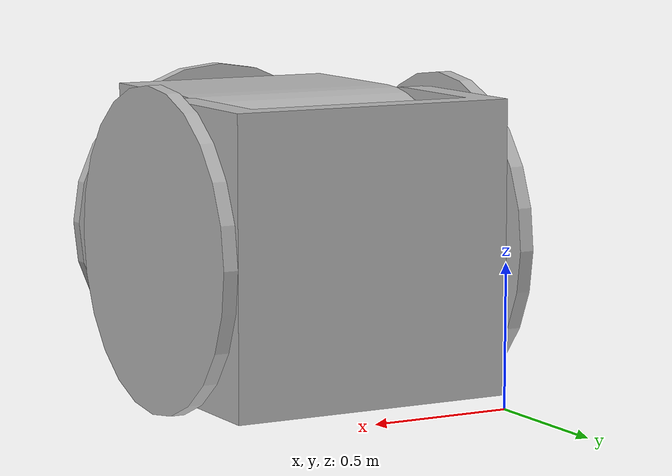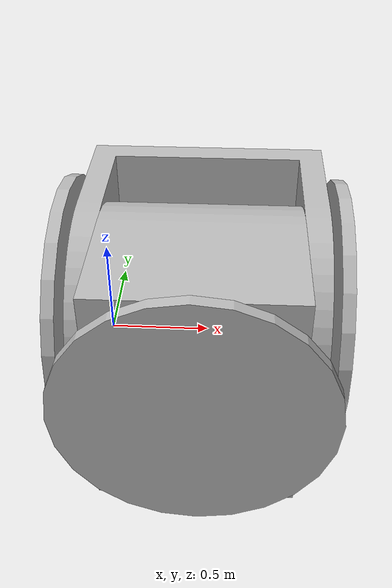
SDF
<?xml version='1.0'?>
<sdf version='1.4'>
    <model name="SMORES_MODULE">
        <static>false</static>

        <link name='BackFrame'>
            <pose>0 0 0.05 1.5707 0 0</pose>
            <inertial>
                <pose>0.5 0.5 0.328099 0 0 0</pose>
                <inertia>
                    <ixx>0.041728</ixx>
                    <ixy>0.0</ixy>
                    <ixz>0.0</ixz>
                    <iyy>0.062372</iyy>
                    <iyz>0.0</iyz>
                    <izz>0.060405</izz>
                </inertia>
            </inertial>
            <collision name='backframe_collision'>
                <geometry>
                    <mesh>
                        <uri>model://SMORES_MODULE/meshes/BackFrame.dae</uri>
                    </mesh>
                </geometry>
            </collision>

            <visual name='backframe_visual'>
                <geometry>
                    <mesh>
                        <uri>model://SMORES_MODULE/meshes/BackFrame.dae</uri>
                    </mesh>
                </geometry>
            </visual>
        </link>

        <link name='FrontFrame'>
            <pose>0 -0.125 0.05 1.5707 0 0</pose>
            <inertial>
                <pose>0.5 0.5 0.561416 0 0 0</pose>
                <inertia>
                    <ixx>0.104128</ixx>
                    <ixy>0.0</ixy>
                    <ixz>0.0</ixz>
                    <iyy>0.089313</iyy>
                    <iyz>0.0</iyz>
                    <izz>0.090897</izz>
                </inertia>
            </inertial>
            <collision name='frontframe_collision'>
                <geometry>
                    <mesh>
                        <uri>model://SMORES_MODULE/meshes/FrontFrame.dae</uri>
                    </mesh>
                </geometry>
            </collision>

            <visual name='frontframe_visual'>
                <geometry>
                    <mesh>
                        <uri>model://SMORES_MODULE/meshes/FrontFrame.dae</uri>
                    </mesh>
                </geometry>
            </visual>
        </link>

        <link name='LeftWheel'>
            <pose>0.525 -0.5 0.05 1.5707 0 1.5707</pose>
            <collision name='leftwheel_collision'>
                <geometry>
                    <mesh>
                        <uri>model://SMORES_MODULE/meshes/Wheel.dae</uri>
                    </mesh>
                </geometry>
            </collision>

            <visual name='leftwheel_visual'>
                <geometry>
                    <mesh>
                        <uri>model://SMORES_MODULE/meshes/Wheel.dae</uri>
                    </mesh>
                </geometry>
            </visual>
        </link>

        <link name='RightWheel'>
            <pose>0.475 -0.5 0.05 1.5707 0 -1.5707</pose>
            <collision name='rightwheel_collision'>
                <geometry>
                    <mesh>
                        <uri>model://SMORES_MODULE/meshes/Wheel.dae</uri>
                    </mesh>
                </geometry>
            </collision>

            <visual name='rightwheel_visual'>
                <geometry>
                    <mesh>
                        <uri>model://SMORES_MODULE/meshes/Wheel.dae</uri>
                    </mesh>
                </geometry>
            </visual>
        </link>

        <link name='FrontWheel'>
            <pose>0.5 -0.65 0.05 1.5707 0 0</pose>
            <collision name='frontwheel_collision'>
                <geometry>
                    <mesh>
                        <uri>model://SMORES_MODULE/meshes/Wheel.dae</uri>
                    </mesh>
                </geometry>
            </collision>

            <visual name='frontwheel_visual'>
                <geometry>
                    <mesh>
                        <uri>model://SMORES_MODULE/meshes/Wheel.dae</uri>
                    </mesh>
                </geometry>
            </visual>
        </link>

        <joint type="revolute" name="frontframe_hinge">
            <pose>0.5 0.5 0.4 0 0 0</pose>
            <child>FrontFrame</child>
            <parent>BackFrame</parent>
            <axis>
                <xyz>1 0 0</xyz>
            </axis>
        </joint>

        <joint type="revolute" name="leftwheel_hinge">
            <pose>0 0.5 0.5 0 0 0</pose>
            <child>LeftWheel</child>
            <parent>BackFrame</parent>
            <axis>
                <xyz>1 0 0</xyz>
            </axis>
        </joint>

        <joint type="revolute" name="rightwheel_hinge">
            <pose>0 0.5 0.5 0 0 0</pose>
            <child>RightWheel</child>
            <parent>BackFrame</parent>
            <axis>
                <xyz>1 0 0</xyz>
            </axis>
        </joint>

        <joint type="revolute" name="frontwheel_hinge">
            <pose>0 0.5 0.5 0 0 0</pose>
            <child>FrontWheel</child>
            <parent>FrontFrame</parent>
            <axis>
                <xyz>0 1 0</xyz>
                <dynamics>
                    <damping>0.20000</damping>
                </dynamics>
                <limit>
                    <lower>-1.5707963</lower>
                    <upper>1.5707963</upper>
                </limit>
            </axis>
        </joint>
    <plugin name="SMORES_MODULE_controller" filename="libSMORES_MODULE_controller.so"/>
    </model>
</sdf>
